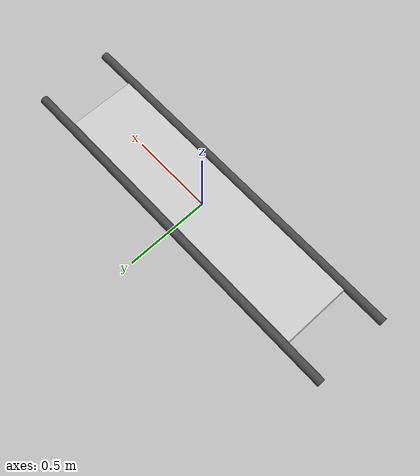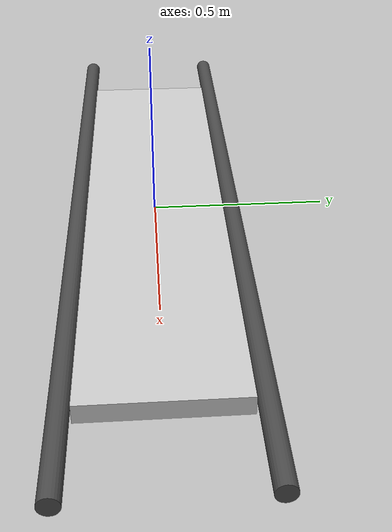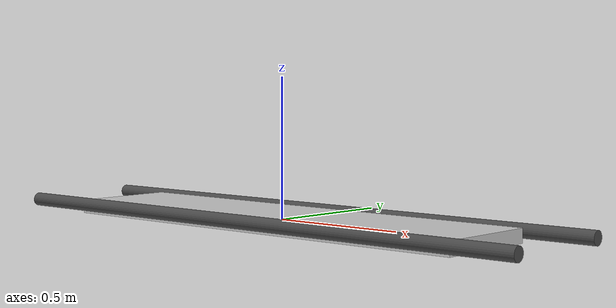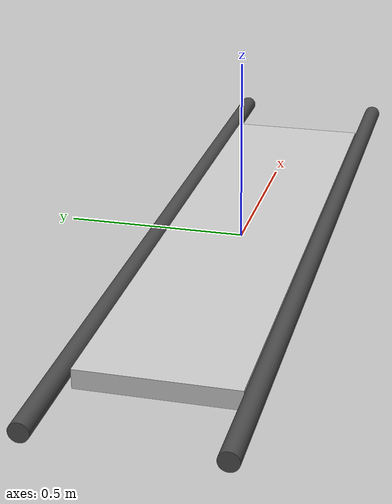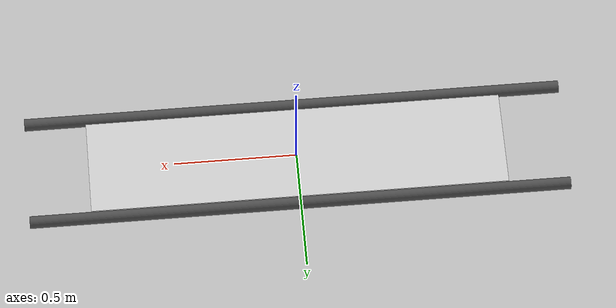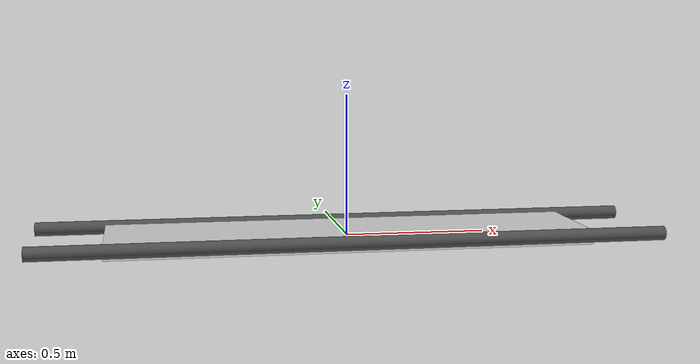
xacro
<?xml version="1.0"?>
<robot xmlns:xacro="http://www.ros.org/wiki/xacro" name="stretcher">
  <xacro:property name="model_width" value=".4" />
  <xacro:property name="model_length" value="1.7" />
  <xacro:property name="model_height" value="0.05" />
  <xacro:property name="pi" value="3.14159265359" />
  <link name="base_link">
    <visual>
      <geometry>
        <box size="${model_length} ${model_width} ${model_height}"/>
      </geometry>
      <material name="light gray">
        <color rgba=".8 .8 .8 1"/>
      </material>
    </visual>
  </link>
  <xacro:macro name="handle" params="prefix reflect">
    <link name="${prefix}_handle">
      <visual>
        <geometry>
          <cylinder length="${model_length+0.5}" radius="${model_height/2}"/>
        </geometry>
        <origin xyz="0 0 0" rpy="0 ${pi/2} 0"/>
        <material name="dark gray">
          <color rgba=".3 .3 .3 1"/>
        </material>
      </visual>
    </link>
    <joint name="base_to_${prefix}_handle" type="fixed">
        <parent link="base_link"/>
        <child link="${prefix}_handle"/>
        <origin xyz="0 ${reflect*(model_width/2 + model_height/2)} ${model_height/4}" />
    </joint>
  </xacro:macro>
  <xacro:handle prefix="right" reflect="1" />
  <xacro:handle prefix="left" reflect="-1" />
</robot>
